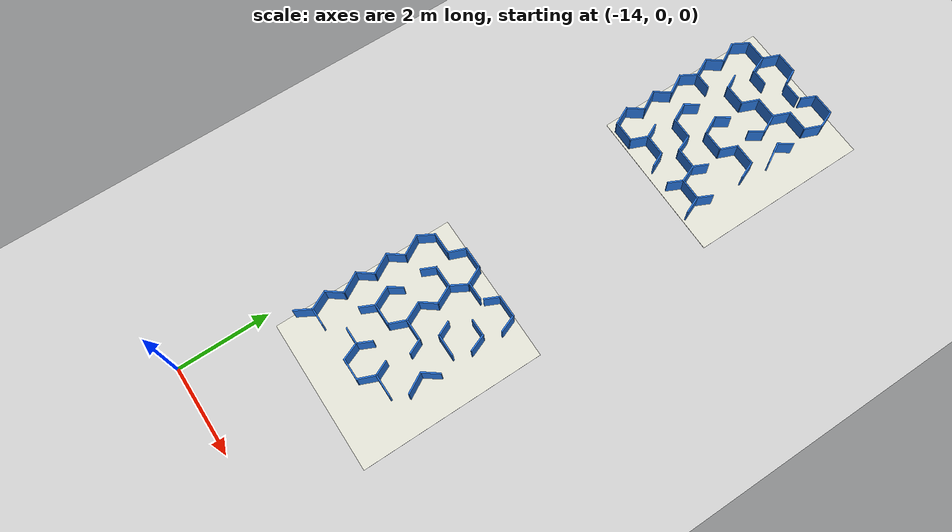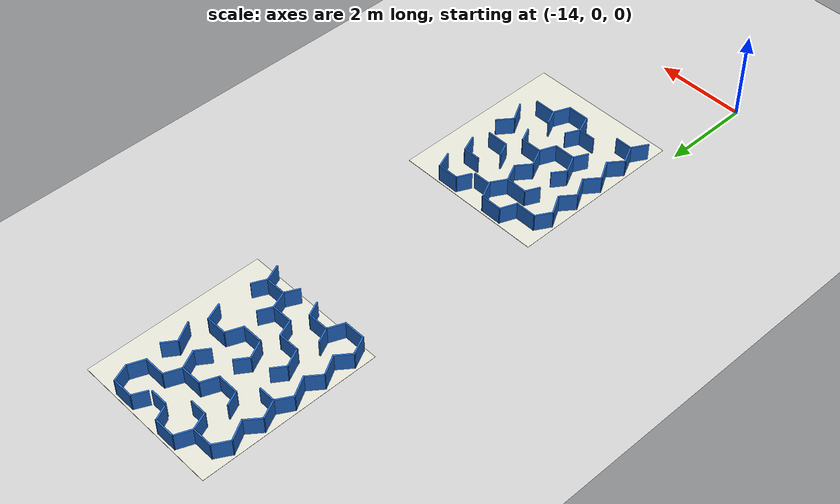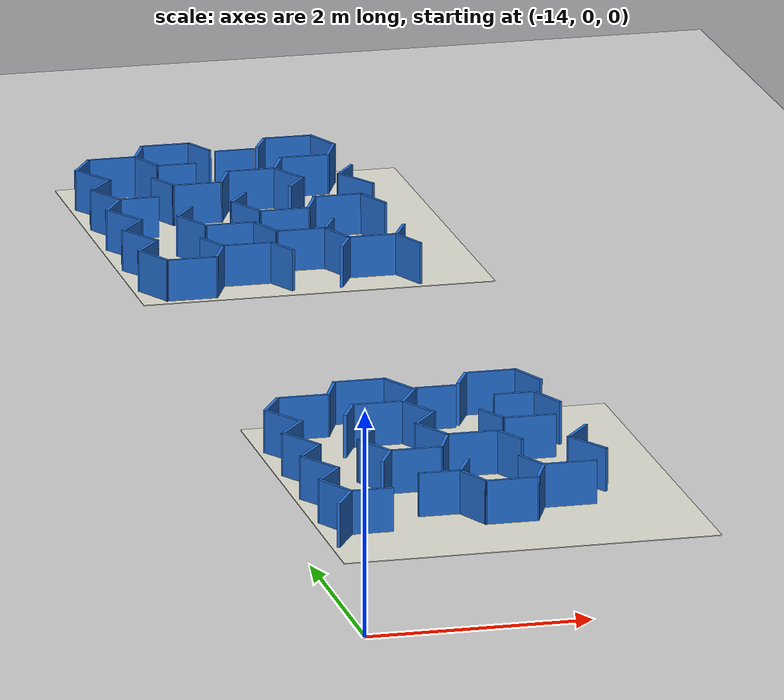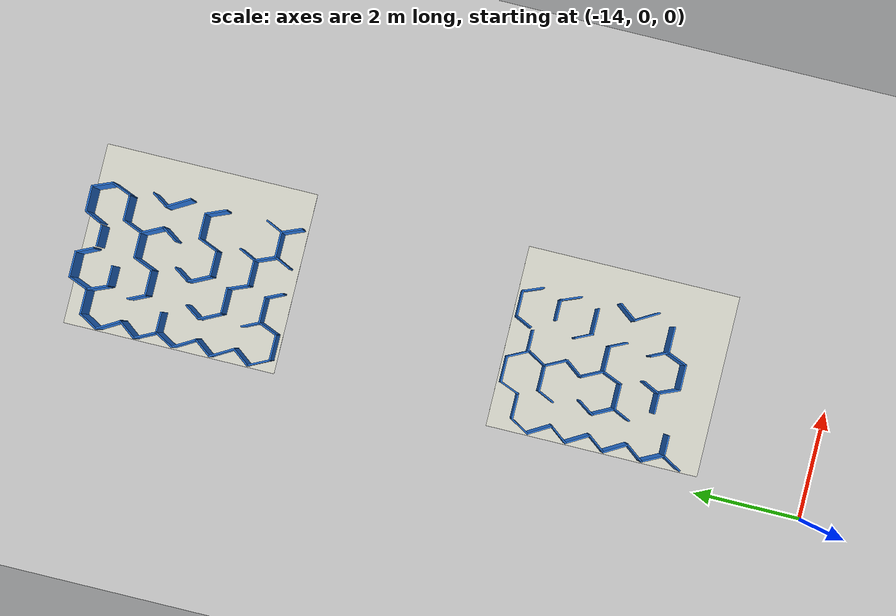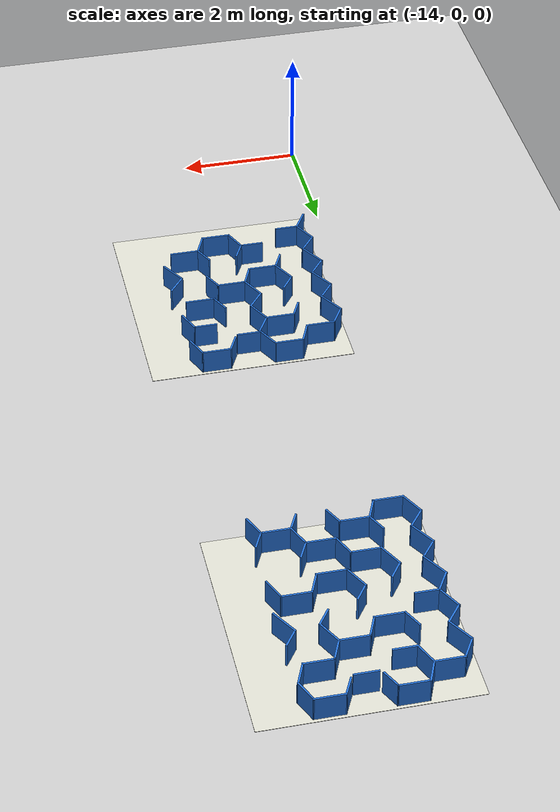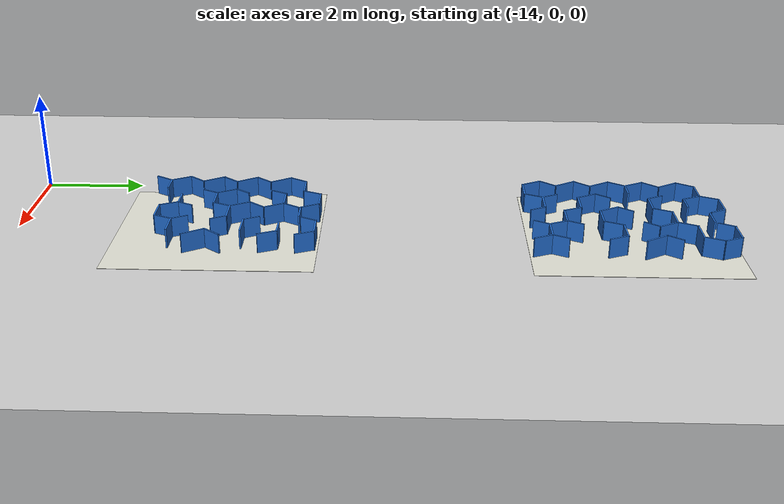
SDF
<sdf version="1.10">
 <world name="nhom8_maze_multi">
  <model name="ground_plane">
   <static>true</static>
   <link name="link">
    <collision name="collision">
     <geometry><plane><normal>0 0 1</normal><size>80.0 80.0</size></plane></geometry>
     <surface><friction><ode><mu>40</mu></ode></friction></surface>
    </collision>
    <visual name="visual">
     <geometry><plane><normal>0 0 1</normal><size>80.0 80.0</size></plane></geometry>
     <material>
      <ambient>0.8 0.8 0.8 1</ambient>
      <diffuse>0.8 0.8 0.8 1</diffuse>
      <specular>0.8 0.8 0.8 1</specular>
     </material>
    </visual>
   </link>
  </model>
  <model name="sigma_1_wall_000">
   <static>true</static>
   <pose>-12.609300 5.935000 0.2000 0 0 0.000000</pose>
   <link name="link">
    <collision name="col"><geometry><box><size>0.4974 0.0300 0.4000</size></box></geometry></collision>
    <visual name="vis">
     <geometry><box><size>0.4974 0.0300 0.4000</size></box></geometry>
     <material><ambient>0.15 0.45 0.85 1</ambient><diffuse>0.15 0.45 0.85 1</diffuse></material>
    </visual>
   </link>
  </model>
  <model name="sigma_1_wall_001">
   <static>true</static>
   <pose>-11.390150 5.935000 0.2000 0 0 0.000000</pose>
   <link name="link">
    <collision name="col"><geometry><box><size>0.4965 0.0300 0.4000</size></box></geometry></collision>
    <visual name="vis">
     <geometry><box><size>0.4965 0.0300 0.4000</size></box></geometry>
     <material><ambient>0.15 0.45 0.85 1</ambient><diffuse>0.15 0.45 0.85 1</diffuse></material>
    </visual>
   </link>
  </model>
  <model name="sigma_1_wall_002">
   <static>true</static>
   <pose>-13.215300 5.585700 0.2000 0 0 0.000000</pose>
   <link name="link">
    <collision name="col"><geometry><box><size>0.4950 0.0300 0.4000</size></box></geometry></collision>
    <visual name="vis">
     <geometry><box><size>0.4950 0.0300 0.4000</size></box></geometry>
     <material><ambient>0.15 0.45 0.85 1</ambient><diffuse>0.15 0.45 0.85 1</diffuse></material>
    </visual>
   </link>
  </model>
  <model name="sigma_1_wall_004">
   <static>true</static>
   <pose>-12.609450 5.231200 0.2000 0 0 0.000000</pose>
   <link name="link">
    <collision name="col"><geometry><box><size>0.4963 0.0300 0.4000</size></box></geometry></collision>
    <visual name="vis">
     <geometry><box><size>0.4963 0.0300 0.4000</size></box></geometry>
     <material><ambient>0.15 0.45 0.85 1</ambient><diffuse>0.15 0.45 0.85 1</diffuse></material>
    </visual>
   </link>
  </model>
  <model name="sigma_1_wall_005">
   <static>true</static>
   <pose>-11.339000 5.231200 0.2000 0 0 0.000000</pose>
   <link name="link">
    <collision name="col"><geometry><box><size>0.3938 0.0300 0.4000</size></box></geometry></collision>
    <visual name="vis">
     <geometry><box><size>0.3938 0.0300 0.4000</size></box></geometry>
     <material><ambient>0.15 0.45 0.85 1</ambient><diffuse>0.15 0.45 0.85 1</diffuse></material>
    </visual>
   </link>
  </model>
  <model name="sigma_1_wall_007">
   <static>true</static>
   <pose>-11.390350 4.530300 0.2000 0 0 0.000000</pose>
   <link name="link">
    <collision name="col"><geometry><box><size>0.4953 0.0300 0.4000</size></box></geometry></collision>
    <visual name="vis">
     <geometry><box><size>0.4953 0.0300 0.4000</size></box></geometry>
     <material><ambient>0.15 0.45 0.85 1</ambient><diffuse>0.15 0.45 0.85 1</diffuse></material>
    </visual>
   </link>
  </model>
  <model name="sigma_1_wall_008">
   <static>true</static>
   <pose>-11.998950 4.175900 0.2000 0 0 0.000000</pose>
   <link name="link">
    <collision name="col"><geometry><box><size>0.4941 0.0300 0.4000</size></box></geometry></collision>
    <visual name="vis">
     <geometry><box><size>0.4941 0.0300 0.4000</size></box></geometry>
     <material><ambient>0.15 0.45 0.85 1</ambient><diffuse>0.15 0.45 0.85 1</diffuse></material>
    </visual>
   </link>
  </model>
  <model name="sigma_1_wall_009">
   <static>true</static>
   <pose>-12.606650 3.829700 0.2000 0 0 0.000000</pose>
   <link name="link">
    <collision name="col"><geometry><box><size>0.4953 0.0300 0.4000</size></box></geometry></collision>
    <visual name="vis">
     <geometry><box><size>0.4953 0.0300 0.4000</size></box></geometry>
     <material><ambient>0.15 0.45 0.85 1</ambient><diffuse>0.15 0.45 0.85 1</diffuse></material>
    </visual>
   </link>
  </model>
  <model name="sigma_1_wall_010">
   <static>true</static>
   <pose>-12.559800 3.124800 0.2000 0 0 0.000000</pose>
   <link name="link">
    <collision name="col"><geometry><box><size>0.3934 0.0300 0.4000</size></box></geometry></collision>
    <visual name="vis">
     <geometry><box><size>0.3934 0.0300 0.4000</size></box></geometry>
     <material><ambient>0.15 0.45 0.85 1</ambient><diffuse>0.15 0.45 0.85 1</diffuse></material>
    </visual>
   </link>
  </model>
  <model name="sigma_1_wall_011">
   <static>true</static>
   <pose>-11.389500 3.124800 0.2000 0 0 0.000000</pose>
   <link name="link">
    <collision name="col"><geometry><box><size>0.4954 0.0300 0.4000</size></box></geometry></collision>
    <visual name="vis">
     <geometry><box><size>0.4954 0.0300 0.4000</size></box></geometry>
     <material><ambient>0.15 0.45 0.85 1</ambient><diffuse>0.15 0.45 0.85 1</diffuse></material>
    </visual>
   </link>
  </model>
  <model name="sigma_1_wall_012">
   <static>true</static>
   <pose>-13.266550 2.774100 0.2000 0 0 0.000000</pose>
   <link name="link">
    <collision name="col"><geometry><box><size>0.3957 0.0300 0.4000</size></box></geometry></collision>
    <visual name="vis">
     <geometry><box><size>0.3957 0.0300 0.4000</size></box></geometry>
     <material><ambient>0.15 0.45 0.85 1</ambient><diffuse>0.15 0.45 0.85 1</diffuse></material>
    </visual>
   </link>
  </model>
  <model name="sigma_1_wall_013">
   <static>true</static>
   <pose>-11.999000 2.774100 0.2000 0 0 0.000000</pose>
   <link name="link">
    <collision name="col"><geometry><box><size>0.4938 0.0300 0.4000</size></box></geometry></collision>
    <visual name="vis">
     <geometry><box><size>0.4938 0.0300 0.4000</size></box></geometry>
     <material><ambient>0.15 0.45 0.85 1</ambient><diffuse>0.15 0.45 0.85 1</diffuse></material>
    </visual>
   </link>
  </model>
  <model name="sigma_1_wall_019">
   <static>true</static>
   <pose>-11.086650 5.760300 0.2000 0 0 -1.188417</pose>
   <link name="link">
    <collision name="col"><geometry><box><size>0.4066 0.0300 0.4000</size></box></geometry></collision>
    <visual name="vis">
     <geometry><box><size>0.4066 0.0300 0.4000</size></box></geometry>
     <material><ambient>0.15 0.45 0.85 1</ambient><diffuse>0.15 0.45 0.85 1</diffuse></material>
    </visual>
   </link>
  </model>
  <model name="sigma_1_wall_021">
   <static>true</static>
   <pose>-11.087150 5.058100 0.2000 0 0 -1.186837</pose>
   <link name="link">
    <collision name="col"><geometry><box><size>0.4034 0.0300 0.4000</size></box></geometry></collision>
    <visual name="vis">
     <geometry><box><size>0.4034 0.0300 0.4000</size></box></geometry>
     <material><ambient>0.15 0.45 0.85 1</ambient><diffuse>0.15 0.45 0.85 1</diffuse></material>
    </visual>
   </link>
  </model>
  <model name="sigma_1_wall_025">
   <static>true</static>
   <pose>-12.281950 5.747350 0.2000 0 0 -1.107845</pose>
   <link name="link">
    <collision name="col"><geometry><box><size>0.4494 0.0300 0.4000</size></box></geometry></collision>
    <visual name="vis">
     <geometry><box><size>0.4494 0.0300 0.4000</size></box></geometry>
     <material><ambient>0.15 0.45 0.85 1</ambient><diffuse>0.15 0.45 0.85 1</diffuse></material>
    </visual>
   </link>
  </model>
  <model name="sigma_1_wall_026">
   <static>true</static>
   <pose>-11.691750 4.674450 0.2000 0 0 -1.125971</pose>
   <link name="link">
    <collision name="col"><geometry><box><size>0.3493 0.0300 0.4000</size></box></geometry></collision>
    <visual name="vis">
     <geometry><box><size>0.3493 0.0300 0.4000</size></box></geometry>
     <material><ambient>0.15 0.45 0.85 1</ambient><diffuse>0.15 0.45 0.85 1</diffuse></material>
    </visual>
   </link>
  </model>
  <model name="sigma_1_wall_027">
   <static>true</static>
   <pose>-11.086900 3.652000 0.2000 0 0 -1.047355</pose>
   <link name="link">
    <collision name="col"><geometry><box><size>0.4909 0.0300 0.4000</size></box></geometry></collision>
    <visual name="vis">
     <geometry><box><size>0.4909 0.0300 0.4000</size></box></geometry>
     <material><ambient>0.15 0.45 0.85 1</ambient><diffuse>0.15 0.45 0.85 1</diffuse></material>
    </visual>
   </link>
  </model>
  <model name="sigma_1_wall_029">
   <static>true</static>
   <pose>-12.282700 5.044250 0.2000 0 0 -1.106650</pose>
   <link name="link">
    <collision name="col"><geometry><box><size>0.4481 0.0300 0.4000</size></box></geometry></collision>
    <visual name="vis">
     <geometry><box><size>0.4481 0.0300 0.4000</size></box></geometry>
     <material><ambient>0.15 0.45 0.85 1</ambient><diffuse>0.15 0.45 0.85 1</diffuse></material>
    </visual>
   </link>
  </model>
  <model name="sigma_1_wall_030">
   <static>true</static>
   <pose>-11.698850 4.033100 0.2000 0 0 -1.126514</pose>
   <link name="link">
    <collision name="col"><geometry><box><size>0.3464 0.0300 0.4000</size></box></geometry></collision>
    <visual name="vis">
     <geometry><box><size>0.3464 0.0300 0.4000</size></box></geometry>
     <material><ambient>0.15 0.45 0.85 1</ambient><diffuse>0.15 0.45 0.85 1</diffuse></material>
    </visual>
   </link>
  </model>
  <model name="sigma_1_wall_031">
   <static>true</static>
   <pose>-12.325350 4.365800 0.2000 0 0 -1.109907</pose>
   <link name="link">
    <collision name="col"><geometry><box><size>0.4540 0.0300 0.4000</size></box></geometry></collision>
    <visual name="vis">
     <geometry><box><size>0.4540 0.0300 0.4000</size></box></geometry>
     <material><ambient>0.15 0.45 0.85 1</ambient><diffuse>0.15 0.45 0.85 1</diffuse></material>
    </visual>
   </link>
  </model>
  <model name="sigma_1_wall_032">
   <static>true</static>
   <pose>-11.691100 3.269000 0.2000 0 0 -1.124803</pose>
   <link name="link">
    <collision name="col"><geometry><box><size>0.3496 0.0300 0.4000</size></box></geometry></collision>
    <visual name="vis">
     <geometry><box><size>0.3496 0.0300 0.4000</size></box></geometry>
     <material><ambient>0.15 0.45 0.85 1</ambient><diffuse>0.15 0.45 0.85 1</diffuse></material>
    </visual>
   </link>
  </model>
  <model name="sigma_1_wall_034">
   <static>true</static>
   <pose>-13.520950 5.056800 0.2000 0 0 -1.047233</pose>
   <link name="link">
    <collision name="col"><geometry><box><size>0.4914 0.0300 0.4000</size></box></geometry></collision>
    <visual name="vis">
     <geometry><box><size>0.4914 0.0300 0.4000</size></box></geometry>
     <material><ambient>0.15 0.45 0.85 1</ambient><diffuse>0.15 0.45 0.85 1</diffuse></material>
    </visual>
   </link>
  </model>
  <model name="sigma_1_wall_035">
   <static>true</static>
   <pose>-12.934300 4.017350 0.2000 0 0 -1.102088</pose>
   <link name="link">
    <collision name="col"><geometry><box><size>0.4507 0.0300 0.4000</size></box></geometry></collision>
    <visual name="vis">
     <geometry><box><size>0.4507 0.0300 0.4000</size></box></geometry>
     <material><ambient>0.15 0.45 0.85 1</ambient><diffuse>0.15 0.45 0.85 1</diffuse></material>
    </visual>
   </link>
  </model>
  <model name="sigma_1_wall_036">
   <static>true</static>
   <pose>-12.304450 2.949450 0.2000 0 0 -1.173137</pose>
   <link name="link">
    <collision name="col"><geometry><box><size>0.4103 0.0300 0.4000</size></box></geometry></collision>
    <visual name="vis">
     <geometry><box><size>0.4103 0.0300 0.4000</size></box></geometry>
     <material><ambient>0.15 0.45 0.85 1</ambient><diffuse>0.15 0.45 0.85 1</diffuse></material>
    </visual>
   </link>
  </model>
  <model name="sigma_1_wall_037">
   <static>true</static>
   <pose>-13.521650 4.354750 0.2000 0 0 -1.047241</pose>
   <link name="link">
    <collision name="col"><geometry><box><size>0.4922 0.0300 0.4000</size></box></geometry></collision>
    <visual name="vis">
     <geometry><box><size>0.4922 0.0300 0.4000</size></box></geometry>
     <material><ambient>0.15 0.45 0.85 1</ambient><diffuse>0.15 0.45 0.85 1</diffuse></material>
    </visual>
   </link>
  </model>
  <model name="sigma_1_wall_039">
   <static>true</static>
   <pose>-13.521800 3.652050 0.2000 0 0 -1.047173</pose>
   <link name="link">
    <collision name="col"><geometry><box><size>0.4932 0.0300 0.4000</size></box></geometry></collision>
    <visual name="vis">
     <geometry><box><size>0.4932 0.0300 0.4000</size></box></geometry>
     <material><ambient>0.15 0.45 0.85 1</ambient><diffuse>0.15 0.45 0.85 1</diffuse></material>
    </visual>
   </link>
  </model>
  <model name="sigma_1_wall_040">
   <static>true</static>
   <pose>-13.543500 2.962350 0.2000 0 0 -1.107248</pose>
   <link name="link">
    <collision name="col"><geometry><box><size>0.4509 0.0300 0.4000</size></box></geometry></collision>
    <visual name="vis">
     <geometry><box><size>0.4509 0.0300 0.4000</size></box></geometry>
     <material><ambient>0.15 0.45 0.85 1</ambient><diffuse>0.15 0.45 0.85 1</diffuse></material>
    </visual>
   </link>
  </model>
  <model name="sigma_1_wall_050">
   <static>true</static>
   <pose>-11.086650 4.002550 0.2000 0 0 0.917494</pose>
   <link name="link">
    <collision name="col"><geometry><box><size>0.4102 0.0300 0.4000</size></box></geometry></collision>
    <visual name="vis">
     <geometry><box><size>0.4102 0.0300 0.4000</size></box></geometry>
     <material><ambient>0.15 0.45 0.85 1</ambient><diffuse>0.15 0.45 0.85 1</diffuse></material>
    </visual>
   </link>
  </model>
  <model name="sigma_1_wall_051">
   <static>true</static>
   <pose>-11.694650 2.949500 0.2000 0 0 1.179087</pose>
   <link name="link">
    <collision name="col"><geometry><box><size>0.4094 0.0300 0.4000</size></box></geometry></collision>
    <visual name="vis">
     <geometry><box><size>0.4094 0.0300 0.4000</size></box></geometry>
     <material><ambient>0.15 0.45 0.85 1</ambient><diffuse>0.15 0.45 0.85 1</diffuse></material>
    </visual>
   </link>
  </model>
  <model name="sigma_1_wall_053">
   <static>true</static>
   <pose>-12.308550 3.268700 0.2000 0 0 1.120708</pose>
   <link name="link">
    <collision name="col"><geometry><box><size>0.3496 0.0300 0.4000</size></box></geometry></collision>
    <visual name="vis">
     <geometry><box><size>0.3496 0.0300 0.4000</size></box></geometry>
     <material><ambient>0.15 0.45 0.85 1</ambient><diffuse>0.15 0.45 0.85 1</diffuse></material>
    </visual>
   </link>
  </model>
  <model name="sigma_1_wall_055">
   <static>true</static>
   <pose>-12.302500 4.002800 0.2000 0 0 1.179275</pose>
   <link name="link">
    <collision name="col"><geometry><box><size>0.4046 0.0300 0.4000</size></box></geometry></collision>
    <visual name="vis">
     <geometry><box><size>0.4046 0.0300 0.4000</size></box></geometry>
     <material><ambient>0.15 0.45 0.85 1</ambient><diffuse>0.15 0.45 0.85 1</diffuse></material>
    </visual>
   </link>
  </model>
  <model name="sigma_1_wall_056">
   <static>true</static>
   <pose>-11.691700 5.791350 0.2000 0 0 1.126550</pose>
   <link name="link">
    <collision name="col"><geometry><box><size>0.3481 0.0300 0.4000</size></box></geometry></collision>
    <visual name="vis">
     <geometry><box><size>0.3481 0.0300 0.4000</size></box></geometry>
     <material><ambient>0.15 0.45 0.85 1</ambient><diffuse>0.15 0.45 0.85 1</diffuse></material>
    </visual>
   </link>
  </model>
  <model name="sigma_1_wall_057">
   <static>true</static>
   <pose>-12.304400 4.706500 0.2000 0 0 0.918315</pose>
   <link name="link">
    <collision name="col"><geometry><box><size>0.4098 0.0300 0.4000</size></box></geometry></collision>
    <visual name="vis">
     <geometry><box><size>0.4098 0.0300 0.4000</size></box></geometry>
     <material><ambient>0.15 0.45 0.85 1</ambient><diffuse>0.15 0.45 0.85 1</diffuse></material>
    </visual>
   </link>
  </model>
  <model name="sigma_1_wall_058">
   <static>true</static>
   <pose>-12.908500 3.684300 0.2000 0 0 1.126963</pose>
   <link name="link">
    <collision name="col"><geometry><box><size>0.3521 0.0300 0.4000</size></box></geometry></collision>
    <visual name="vis">
     <geometry><box><size>0.3521 0.0300 0.4000</size></box></geometry>
     <material><ambient>0.15 0.45 0.85 1</ambient><diffuse>0.15 0.45 0.85 1</diffuse></material>
    </visual>
   </link>
  </model>
  <model name="sigma_1_wall_059">
   <static>true</static>
   <pose>-13.542800 2.610350 0.2000 0 0 1.052504</pose>
   <link name="link">
    <collision name="col"><geometry><box><size>0.4069 0.0300 0.4000</size></box></geometry></collision>
    <visual name="vis">
     <geometry><box><size>0.4069 0.0300 0.4000</size></box></geometry>
     <material><ambient>0.15 0.45 0.85 1</ambient><diffuse>0.15 0.45 0.85 1</diffuse></material>
    </visual>
   </link>
  </model>
  <model name="sigma_1_wall_060">
   <static>true</static>
   <pose>-12.282250 5.395450 0.2000 0 0 1.050952</pose>
   <link name="link">
    <collision name="col"><geometry><box><size>0.4085 0.0300 0.4000</size></box></geometry></collision>
    <visual name="vis">
     <geometry><box><size>0.4085 0.0300 0.4000</size></box></geometry>
     <material><ambient>0.15 0.45 0.85 1</ambient><diffuse>0.15 0.45 0.85 1</diffuse></material>
    </visual>
   </link>
  </model>
  <model name="sigma_1_wall_061">
   <static>true</static>
   <pose>-12.938600 4.336050 0.2000 0 0 0.965451</pose>
   <link name="link">
    <collision name="col"><geometry><box><size>0.3487 0.0300 0.4000</size></box></geometry></collision>
    <visual name="vis">
     <geometry><box><size>0.3487 0.0300 0.4000</size></box></geometry>
     <material><ambient>0.15 0.45 0.85 1</ambient><diffuse>0.15 0.45 0.85 1</diffuse></material>
    </visual>
   </link>
  </model>
  <model name="sigma_1_wall_062">
   <static>true</static>
   <pose>-13.521800 3.301000 0.2000 0 0 0.914505</pose>
   <link name="link">
    <collision name="col"><geometry><box><size>0.4097 0.0300 0.4000</size></box></geometry></collision>
    <visual name="vis">
     <geometry><box><size>0.4097 0.0300 0.4000</size></box></geometry>
     <material><ambient>0.15 0.45 0.85 1</ambient><diffuse>0.15 0.45 0.85 1</diffuse></material>
    </visual>
   </link>
  </model>
  <model name="sigma_1_wall_063">
   <static>true</static>
   <pose>-12.910000 5.088150 0.2000 0 0 1.130277</pose>
   <link name="link">
    <collision name="col"><geometry><box><size>0.3461 0.0300 0.4000</size></box></geometry></collision>
    <visual name="vis">
     <geometry><box><size>0.3461 0.0300 0.4000</size></box></geometry>
     <material><ambient>0.15 0.45 0.85 1</ambient><diffuse>0.15 0.45 0.85 1</diffuse></material>
    </visual>
   </link>
  </model>
  <model name="sigma_1_wall_064">
   <static>true</static>
   <pose>-13.521800 4.003600 0.2000 0 0 0.916675</pose>
   <link name="link">
    <collision name="col"><geometry><box><size>0.4105 0.0300 0.4000</size></box></geometry></collision>
    <visual name="vis">
     <geometry><box><size>0.4105 0.0300 0.4000</size></box></geometry>
     <material><ambient>0.15 0.45 0.85 1</ambient><diffuse>0.15 0.45 0.85 1</diffuse></material>
    </visual>
   </link>
  </model>
  <model name="sigma_1_wall_065">
   <static>true</static>
   <pose>-12.912950 5.760300 0.2000 0 0 1.190244</pose>
   <link name="link">
    <collision name="col"><geometry><box><size>0.4063 0.0300 0.4000</size></box></geometry></collision>
    <visual name="vis">
     <geometry><box><size>0.4063 0.0300 0.4000</size></box></geometry>
     <material><ambient>0.15 0.45 0.85 1</ambient><diffuse>0.15 0.45 0.85 1</diffuse></material>
    </visual>
   </link>
  </model>
  <model name="sigma_1_wall_066">
   <static>true</static>
   <pose>-13.521400 4.705950 0.2000 0 0 0.916823</pose>
   <link name="link">
    <collision name="col"><geometry><box><size>0.4106 0.0300 0.4000</size></box></geometry></collision>
    <visual name="vis">
     <geometry><box><size>0.4106 0.0300 0.4000</size></box></geometry>
     <material><ambient>0.15 0.45 0.85 1</ambient><diffuse>0.15 0.45 0.85 1</diffuse></material>
    </visual>
   </link>
  </model>
  <model name="sigma_1_wall_067">
   <static>true</static>
   <pose>-13.542050 5.421150 0.2000 0 0 1.050832</pose>
   <link name="link">
    <collision name="col"><geometry><box><size>0.4092 0.0300 0.4000</size></box></geometry></collision>
    <visual name="vis">
     <geometry><box><size>0.4092 0.0300 0.4000</size></box></geometry>
     <material><ambient>0.15 0.45 0.85 1</ambient><diffuse>0.15 0.45 0.85 1</diffuse></material>
    </visual>
   </link>
  </model>
  <model name="sigma_1_wall_068">
   <static>true</static>
   <pose>-11.997100 5.588500 0.2000 0 0 0.000000</pose>
   <link name="link">
    <collision name="col"><geometry><box><size>0.3966 0.0300 0.4000</size></box></geometry></collision>
    <visual name="vis">
     <geometry><box><size>0.3966 0.0300 0.4000</size></box></geometry>
     <material><ambient>0.15 0.45 0.85 1</ambient><diffuse>0.15 0.45 0.85 1</diffuse></material>
    </visual>
   </link>
  </model>
  <model name="sigma_1_floor">
   <static>true</static>
   <pose>-12.000000 4.000000 -0.02 0 0 0</pose>
   <link name="link">
    <collision name="col"><geometry><box><size>3.3945 3.9891 0.03</size></box></geometry></collision>
    <visual name="vis">
     <geometry><box><size>3.3945 3.9891 0.03</size></box></geometry>
     <material><ambient>0.87 0.87 0.82 1</ambient><diffuse>0.87 0.87 0.82 1</diffuse></material>
    </visual>
   </link>
  </model>
  <model name="sigma_5_wall_000">
   <static>true</static>
   <pose>-12.609300 13.935000 0.2000 0 0 0.000000</pose>
   <link name="link">
    <collision name="col"><geometry><box><size>0.4972 0.0300 0.4000</size></box></geometry></collision>
    <visual name="vis">
     <geometry><box><size>0.4972 0.0300 0.4000</size></box></geometry>
     <material><ambient>0.15 0.45 0.85 1</ambient><diffuse>0.15 0.45 0.85 1</diffuse></material>
    </visual>
   </link>
  </model>
  <model name="sigma_5_wall_001">
   <static>true</static>
   <pose>-11.390100 13.935000 0.2000 0 0 0.000000</pose>
   <link name="link">
    <collision name="col"><geometry><box><size>0.4964 0.0300 0.4000</size></box></geometry></collision>
    <visual name="vis">
     <geometry><box><size>0.4964 0.0300 0.4000</size></box></geometry>
     <material><ambient>0.15 0.45 0.85 1</ambient><diffuse>0.15 0.45 0.85 1</diffuse></material>
    </visual>
   </link>
  </model>
  <model name="sigma_5_wall_002">
   <static>true</static>
   <pose>-13.216750 13.584800 0.2000 0 0 0.000000</pose>
   <link name="link">
    <collision name="col"><geometry><box><size>0.4921 0.0300 0.4000</size></box></geometry></collision>
    <visual name="vis">
     <geometry><box><size>0.4921 0.0300 0.4000</size></box></geometry>
     <material><ambient>0.15 0.45 0.85 1</ambient><diffuse>0.15 0.45 0.85 1</diffuse></material>
    </visual>
   </link>
  </model>
  <model name="sigma_5_wall_004">
   <static>true</static>
   <pose>-12.660100 13.232500 0.2000 0 0 0.000000</pose>
   <link name="link">
    <collision name="col"><geometry><box><size>0.3920 0.0300 0.4000</size></box></geometry></collision>
    <visual name="vis">
     <geometry><box><size>0.3920 0.0300 0.4000</size></box></geometry>
     <material><ambient>0.15 0.45 0.85 1</ambient><diffuse>0.15 0.45 0.85 1</diffuse></material>
    </visual>
   </link>
  </model>
  <model name="sigma_5_wall_005">
   <static>true</static>
   <pose>-11.390450 13.232500 0.2000 0 0 0.000000</pose>
   <link name="link">
    <collision name="col"><geometry><box><size>0.4949 0.0300 0.4000</size></box></geometry></collision>
    <visual name="vis">
     <geometry><box><size>0.4949 0.0300 0.4000</size></box></geometry>
     <material><ambient>0.15 0.45 0.85 1</ambient><diffuse>0.15 0.45 0.85 1</diffuse></material>
    </visual>
   </link>
  </model>
  <model name="sigma_5_wall_006">
   <static>true</static>
   <pose>-12.000150 12.883100 0.2000 0 0 0.000000</pose>
   <link name="link">
    <collision name="col"><geometry><box><size>0.4937 0.0300 0.4000</size></box></geometry></collision>
    <visual name="vis">
     <geometry><box><size>0.4937 0.0300 0.4000</size></box></geometry>
     <material><ambient>0.15 0.45 0.85 1</ambient><diffuse>0.15 0.45 0.85 1</diffuse></material>
    </visual>
   </link>
  </model>
  <model name="sigma_5_wall_007">
   <static>true</static>
   <pose>-12.609400 12.532200 0.2000 0 0 0.000000</pose>
   <link name="link">
    <collision name="col"><geometry><box><size>0.4956 0.0300 0.4000</size></box></geometry></collision>
    <visual name="vis">
     <geometry><box><size>0.4956 0.0300 0.4000</size></box></geometry>
     <material><ambient>0.15 0.45 0.85 1</ambient><diffuse>0.15 0.45 0.85 1</diffuse></material>
    </visual>
   </link>
  </model>
  <model name="sigma_5_wall_008">
   <static>true</static>
   <pose>-13.266200 12.177000 0.2000 0 0 0.000000</pose>
   <link name="link">
    <collision name="col"><geometry><box><size>0.3950 0.0300 0.4000</size></box></geometry></collision>
    <visual name="vis">
     <geometry><box><size>0.3950 0.0300 0.4000</size></box></geometry>
     <material><ambient>0.15 0.45 0.85 1</ambient><diffuse>0.15 0.45 0.85 1</diffuse></material>
    </visual>
   </link>
  </model>
  <model name="sigma_5_wall_009">
   <static>true</static>
   <pose>-11.391300 11.828000 0.2000 0 0 0.000000</pose>
   <link name="link">
    <collision name="col"><geometry><box><size>0.4922 0.0300 0.4000</size></box></geometry></collision>
    <visual name="vis">
     <geometry><box><size>0.4922 0.0300 0.4000</size></box></geometry>
     <material><ambient>0.15 0.45 0.85 1</ambient><diffuse>0.15 0.45 0.85 1</diffuse></material>
    </visual>
   </link>
  </model>
  <model name="sigma_5_wall_010">
   <static>true</static>
   <pose>-11.999600 11.476000 0.2000 0 0 0.000000</pose>
   <link name="link">
    <collision name="col"><geometry><box><size>0.4952 0.0300 0.4000</size></box></geometry></collision>
    <visual name="vis">
     <geometry><box><size>0.4952 0.0300 0.4000</size></box></geometry>
     <material><ambient>0.15 0.45 0.85 1</ambient><diffuse>0.15 0.45 0.85 1</diffuse></material>
    </visual>
   </link>
  </model>
  <model name="sigma_5_wall_012">
   <static>true</static>
   <pose>-12.609200 11.124500 0.2000 0 0 0.000000</pose>
   <link name="link">
    <collision name="col"><geometry><box><size>0.4974 0.0300 0.4000</size></box></geometry></collision>
    <visual name="vis">
     <geometry><box><size>0.4974 0.0300 0.4000</size></box></geometry>
     <material><ambient>0.15 0.45 0.85 1</ambient><diffuse>0.15 0.45 0.85 1</diffuse></material>
    </visual>
   </link>
  </model>
  <model name="sigma_5_wall_013">
   <static>true</static>
   <pose>-12.000700 10.774600 0.2000 0 0 0.000000</pose>
   <link name="link">
    <collision name="col"><geometry><box><size>0.4942 0.0300 0.4000</size></box></geometry></collision>
    <visual name="vis">
     <geometry><box><size>0.4942 0.0300 0.4000</size></box></geometry>
     <material><ambient>0.15 0.45 0.85 1</ambient><diffuse>0.15 0.45 0.85 1</diffuse></material>
    </visual>
   </link>
  </model>
  <model name="sigma_5_wall_014">
   <static>true</static>
   <pose>-12.606600 10.419600 0.2000 0 0 0.000000</pose>
   <link name="link">
    <collision name="col"><geometry><box><size>0.4962 0.0300 0.4000</size></box></geometry></collision>
    <visual name="vis">
     <geometry><box><size>0.4962 0.0300 0.4000</size></box></geometry>
     <material><ambient>0.15 0.45 0.85 1</ambient><diffuse>0.15 0.45 0.85 1</diffuse></material>
    </visual>
   </link>
  </model>
  <model name="sigma_5_wall_015">
   <static>true</static>
   <pose>-11.390700 10.419600 0.2000 0 0 0.000000</pose>
   <link name="link">
    <collision name="col"><geometry><box><size>0.4916 0.0300 0.4000</size></box></geometry></collision>
    <visual name="vis">
     <geometry><box><size>0.4916 0.0300 0.4000</size></box></geometry>
     <material><ambient>0.15 0.45 0.85 1</ambient><diffuse>0.15 0.45 0.85 1</diffuse></material>
    </visual>
   </link>
  </model>
  <model name="sigma_5_wall_016">
   <static>true</static>
   <pose>-13.217450 10.073700 0.2000 0 0 0.000000</pose>
   <link name="link">
    <collision name="col"><geometry><box><size>0.4991 0.0300 0.4000</size></box></geometry></collision>
    <visual name="vis">
     <geometry><box><size>0.4991 0.0300 0.4000</size></box></geometry>
     <material><ambient>0.15 0.45 0.85 1</ambient><diffuse>0.15 0.45 0.85 1</diffuse></material>
    </visual>
   </link>
  </model>
  <model name="sigma_5_wall_019">
   <static>true</static>
   <pose>-11.085450 13.759900 0.2000 0 0 -1.183240</pose>
   <link name="link">
    <collision name="col"><geometry><box><size>0.4083 0.0300 0.4000</size></box></geometry></collision>
    <visual name="vis">
     <geometry><box><size>0.4083 0.0300 0.4000</size></box></geometry>
     <material><ambient>0.15 0.45 0.85 1</ambient><diffuse>0.15 0.45 0.85 1</diffuse></material>
    </visual>
   </link>
  </model>
  <model name="sigma_5_wall_022">
   <static>true</static>
   <pose>-11.086750 12.354550 0.2000 0 0 -1.047186</pose>
   <link name="link">
    <collision name="col"><geometry><box><size>0.4918 0.0300 0.4000</size></box></geometry></collision>
    <visual name="vis">
     <geometry><box><size>0.4918 0.0300 0.4000</size></box></geometry>
     <material><ambient>0.15 0.45 0.85 1</ambient><diffuse>0.15 0.45 0.85 1</diffuse></material>
    </visual>
   </link>
  </model>
  <model name="sigma_5_wall_024">
   <static>true</static>
   <pose>-12.307600 13.791500 0.2000 0 0 -1.127738</pose>
   <link name="link">
    <collision name="col"><geometry><box><size>0.3476 0.0300 0.4000</size></box></geometry></collision>
    <visual name="vis">
     <geometry><box><size>0.3476 0.0300 0.4000</size></box></geometry>
     <material><ambient>0.15 0.45 0.85 1</ambient><diffuse>0.15 0.45 0.85 1</diffuse></material>
    </visual>
   </link>
  </model>
  <model name="sigma_5_wall_025">
   <static>true</static>
   <pose>-11.673850 12.694050 0.2000 0 0 -1.107445</pose>
   <link name="link">
    <collision name="col"><geometry><box><size>0.4526 0.0300 0.4000</size></box></geometry></collision>
    <visual name="vis">
     <geometry><box><size>0.4526 0.0300 0.4000</size></box></geometry>
     <material><ambient>0.15 0.45 0.85 1</ambient><diffuse>0.15 0.45 0.85 1</diffuse></material>
    </visual>
   </link>
  </model>
  <model name="sigma_5_wall_026">
   <static>true</static>
   <pose>-11.086950 11.652000 0.2000 0 0 -1.176604</pose>
   <link name="link">
    <collision name="col"><geometry><box><size>0.4111 0.0300 0.4000</size></box></geometry></collision>
    <visual name="vis">
     <geometry><box><size>0.4111 0.0300 0.4000</size></box></geometry>
     <material><ambient>0.15 0.45 0.85 1</ambient><diffuse>0.15 0.45 0.85 1</diffuse></material>
    </visual>
   </link>
  </model>
  <model name="sigma_5_wall_028">
   <static>true</static>
   <pose>-12.913400 13.408650 0.2000 0 0 -1.181341</pose>
   <link name="link">
    <collision name="col"><geometry><box><size>0.4109 0.0300 0.4000</size></box></geometry></collision>
    <visual name="vis">
     <geometry><box><size>0.4109 0.0300 0.4000</size></box></geometry>
     <material><ambient>0.15 0.45 0.85 1</ambient><diffuse>0.15 0.45 0.85 1</diffuse></material>
    </visual>
   </link>
  </model>
  <model name="sigma_5_wall_029">
   <static>true</static>
   <pose>-11.088450 10.246650 0.2000 0 0 -1.178574</pose>
   <link name="link">
    <collision name="col"><geometry><box><size>0.4042 0.0300 0.4000</size></box></geometry></collision>
    <visual name="vis">
     <geometry><box><size>0.4042 0.0300 0.4000</size></box></geometry>
     <material><ambient>0.15 0.45 0.85 1</ambient><diffuse>0.15 0.45 0.85 1</diffuse></material>
    </visual>
   </link>
  </model>
  <model name="sigma_5_wall_030">
   <static>true</static>
   <pose>-12.910100 12.676300 0.2000 0 0 -1.130251</pose>
   <link name="link">
    <collision name="col"><geometry><box><size>0.3485 0.0300 0.4000</size></box></geometry></collision>
    <visual name="vis">
     <geometry><box><size>0.3485 0.0300 0.4000</size></box></geometry>
     <material><ambient>0.15 0.45 0.85 1</ambient><diffuse>0.15 0.45 0.85 1</diffuse></material>
    </visual>
   </link>
  </model>
  <model name="sigma_5_wall_031">
   <static>true</static>
   <pose>-12.325850 11.664400 0.2000 0 0 -1.109729</pose>
   <link name="link">
    <collision name="col"><geometry><box><size>0.4507 0.0300 0.4000</size></box></geometry></collision>
    <visual name="vis">
     <geometry><box><size>0.4507 0.0300 0.4000</size></box></geometry>
     <material><ambient>0.15 0.45 0.85 1</ambient><diffuse>0.15 0.45 0.85 1</diffuse></material>
    </visual>
   </link>
  </model>
  <model name="sigma_5_wall_032">
   <static>true</static>
   <pose>-11.695100 10.597050 0.2000 0 0 -1.177918</pose>
   <link name="link">
    <collision name="col"><geometry><box><size>0.4143 0.0300 0.4000</size></box></geometry></collision>
    <visual name="vis">
     <geometry><box><size>0.4143 0.0300 0.4000</size></box></geometry>
     <material><ambient>0.15 0.45 0.85 1</ambient><diffuse>0.15 0.45 0.85 1</diffuse></material>
    </visual>
   </link>
  </model>
  <model name="sigma_5_wall_033">
   <static>true</static>
   <pose>-13.521000 13.056650 0.2000 0 0 -1.047159</pose>
   <link name="link">
    <collision name="col"><geometry><box><size>0.4916 0.0300 0.4000</size></box></geometry></collision>
    <visual name="vis">
     <geometry><box><size>0.4916 0.0300 0.4000</size></box></geometry>
     <material><ambient>0.15 0.45 0.85 1</ambient><diffuse>0.15 0.45 0.85 1</diffuse></material>
    </visual>
   </link>
  </model>
  <model name="sigma_5_wall_034">
   <static>true</static>
   <pose>-12.304150 10.949550 0.2000 0 0 -1.183870</pose>
   <link name="link">
    <collision name="col"><geometry><box><size>0.4079 0.0300 0.4000</size></box></geometry></collision>
    <visual name="vis">
     <geometry><box><size>0.4079 0.0300 0.4000</size></box></geometry>
     <material><ambient>0.15 0.45 0.85 1</ambient><diffuse>0.15 0.45 0.85 1</diffuse></material>
    </visual>
   </link>
  </model>
  <model name="sigma_5_wall_035">
   <static>true</static>
   <pose>-13.543100 12.366450 0.2000 0 0 -1.108826</pose>
   <link name="link">
    <collision name="col"><geometry><box><size>0.4532 0.0300 0.4000</size></box></geometry></collision>
    <visual name="vis">
     <geometry><box><size>0.4532 0.0300 0.4000</size></box></geometry>
     <material><ambient>0.15 0.45 0.85 1</ambient><diffuse>0.15 0.45 0.85 1</diffuse></material>
    </visual>
   </link>
  </model>
  <model name="sigma_5_wall_036">
   <static>true</static>
   <pose>-12.935950 11.313150 0.2000 0 0 -1.112210</pose>
   <link name="link">
    <collision name="col"><geometry><box><size>0.4507 0.0300 0.4000</size></box></geometry></collision>
    <visual name="vis">
     <geometry><box><size>0.4507 0.0300 0.4000</size></box></geometry>
     <material><ambient>0.15 0.45 0.85 1</ambient><diffuse>0.15 0.45 0.85 1</diffuse></material>
    </visual>
   </link>
  </model>
  <model name="sigma_5_wall_037">
   <static>true</static>
   <pose>-12.305900 10.276150 0.2000 0 0 -1.130463</pose>
   <link name="link">
    <collision name="col"><geometry><box><size>0.3472 0.0300 0.4000</size></box></geometry></collision>
    <visual name="vis">
     <geometry><box><size>0.3472 0.0300 0.4000</size></box></geometry>
     <material><ambient>0.15 0.45 0.85 1</ambient><diffuse>0.15 0.45 0.85 1</diffuse></material>
    </visual>
   </link>
  </model>
  <model name="sigma_5_wall_038">
   <static>true</static>
   <pose>-13.521800 11.651900 0.2000 0 0 -1.047072</pose>
   <link name="link">
    <collision name="col"><geometry><box><size>0.4931 0.0300 0.4000</size></box></geometry></collision>
    <visual name="vis">
     <geometry><box><size>0.4931 0.0300 0.4000</size></box></geometry>
     <material><ambient>0.15 0.45 0.85 1</ambient><diffuse>0.15 0.45 0.85 1</diffuse></material>
    </visual>
   </link>
  </model>
  <model name="sigma_5_wall_039">
   <static>true</static>
   <pose>-12.908850 10.564700 0.2000 0 0 -1.126487</pose>
   <link name="link">
    <collision name="col"><geometry><box><size>0.3515 0.0300 0.4000</size></box></geometry></collision>
    <visual name="vis">
     <geometry><box><size>0.3515 0.0300 0.4000</size></box></geometry>
     <material><ambient>0.15 0.45 0.85 1</ambient><diffuse>0.15 0.45 0.85 1</diffuse></material>
    </visual>
   </link>
  </model>
  <model name="sigma_5_wall_040">
   <static>true</static>
   <pose>-13.521850 10.949250 0.2000 0 0 -1.047241</pose>
   <link name="link">
    <collision name="col"><geometry><box><size>0.4922 0.0300 0.4000</size></box></geometry></collision>
    <visual name="vis">
     <geometry><box><size>0.4922 0.0300 0.4000</size></box></geometry>
     <material><ambient>0.15 0.45 0.85 1</ambient><diffuse>0.15 0.45 0.85 1</diffuse></material>
    </visual>
   </link>
  </model>
  <model name="sigma_5_wall_041">
   <static>true</static>
   <pose>-13.544050 10.260150 0.2000 0 0 -1.112266</pose>
   <link name="link">
    <collision name="col"><geometry><box><size>0.4457 0.0300 0.4000</size></box></geometry></collision>
    <visual name="vis">
     <geometry><box><size>0.4457 0.0300 0.4000</size></box></geometry>
     <material><ambient>0.15 0.45 0.85 1</ambient><diffuse>0.15 0.45 0.85 1</diffuse></material>
    </visual>
   </link>
  </model>
  <model name="sigma_5_wall_045">
   <static>true</static>
   <pose>-11.090950 10.564650 0.2000 0 0 1.126879</pose>
   <link name="link">
    <collision name="col"><geometry><box><size>0.3514 0.0300 0.4000</size></box></geometry></collision>
    <visual name="vis">
     <geometry><box><size>0.3514 0.0300 0.4000</size></box></geometry>
     <material><ambient>0.15 0.45 0.85 1</ambient><diffuse>0.15 0.45 0.85 1</diffuse></material>
    </visual>
   </link>
  </model>
  <model name="sigma_5_wall_048">
   <static>true</static>
   <pose>-11.691200 10.275900 0.2000 0 0 1.118922</pose>
   <link name="link">
    <collision name="col"><geometry><box><size>0.3495 0.0300 0.4000</size></box></geometry></collision>
    <visual name="vis">
     <geometry><box><size>0.3495 0.0300 0.4000</size></box></geometry>
     <material><ambient>0.15 0.45 0.85 1</ambient><diffuse>0.15 0.45 0.85 1</diffuse></material>
    </visual>
   </link>
  </model>
  <model name="sigma_5_wall_051">
   <static>true</static>
   <pose>-11.699250 10.918300 0.2000 0 0 1.121490</pose>
   <link name="link">
    <collision name="col"><geometry><box><size>0.3493 0.0300 0.4000</size></box></geometry></collision>
    <visual name="vis">
     <geometry><box><size>0.3493 0.0300 0.4000</size></box></geometry>
     <material><ambient>0.15 0.45 0.85 1</ambient><diffuse>0.15 0.45 0.85 1</diffuse></material>
    </visual>
   </link>
  </model>
  <model name="sigma_5_wall_052">
   <static>true</static>
   <pose>-11.111300 12.686950 0.2000 0 0 0.969843</pose>
   <link name="link">
    <collision name="col"><geometry><box><size>0.3512 0.0300 0.4000</size></box></geometry></collision>
    <visual name="vis">
     <geometry><box><size>0.3512 0.0300 0.4000</size></box></geometry>
     <material><ambient>0.15 0.45 0.85 1</ambient><diffuse>0.15 0.45 0.85 1</diffuse></material>
    </visual>
   </link>
  </model>
  <model name="sigma_5_wall_053">
   <static>true</static>
   <pose>-11.694700 11.651950 0.2000 0 0 1.180971</pose>
   <link name="link">
    <collision name="col"><geometry><box><size>0.4105 0.0300 0.4000</size></box></geometry></collision>
    <visual name="vis">
     <geometry><box><size>0.4105 0.0300 0.4000</size></box></geometry>
     <material><ambient>0.15 0.45 0.85 1</ambient><diffuse>0.15 0.45 0.85 1</diffuse></material>
    </visual>
   </link>
  </model>
  <model name="sigma_5_wall_054">
   <static>true</static>
   <pose>-11.085950 13.408650 0.2000 0 0 1.182918</pose>
   <link name="link">
    <collision name="col"><geometry><box><size>0.4106 0.0300 0.4000</size></box></geometry></collision>
    <visual name="vis">
     <geometry><box><size>0.4106 0.0300 0.4000</size></box></geometry>
     <material><ambient>0.15 0.45 0.85 1</ambient><diffuse>0.15 0.45 0.85 1</diffuse></material>
    </visual>
   </link>
  </model>
  <model name="sigma_5_wall_055">
   <static>true</static>
   <pose>-11.670150 12.373800 0.2000 0 0 0.965705</pose>
   <link name="link">
    <collision name="col"><geometry><box><size>0.3490 0.0300 0.4000</size></box></geometry></collision>
    <visual name="vis">
     <geometry><box><size>0.3490 0.0300 0.4000</size></box></geometry>
     <material><ambient>0.15 0.45 0.85 1</ambient><diffuse>0.15 0.45 0.85 1</diffuse></material>
    </visual>
   </link>
  </model>
  <model name="sigma_5_wall_056">
   <static>true</static>
   <pose>-12.911300 10.246650 0.2000 0 0 1.178346</pose>
   <link name="link">
    <collision name="col"><geometry><box><size>0.4042 0.0300 0.4000</size></box></geometry></collision>
    <visual name="vis">
     <geometry><box><size>0.4042 0.0300 0.4000</size></box></geometry>
     <material><ambient>0.15 0.45 0.85 1</ambient><diffuse>0.15 0.45 0.85 1</diffuse></material>
    </visual>
   </link>
  </model>
  <model name="sigma_5_wall_057">
   <static>true</static>
   <pose>-11.695600 13.057800 0.2000 0 0 1.176194</pose>
   <link name="link">
    <collision name="col"><geometry><box><size>0.4084 0.0300 0.4000</size></box></geometry></collision>
    <visual name="vis">
     <geometry><box><size>0.4084 0.0300 0.4000</size></box></geometry>
     <material><ambient>0.15 0.45 0.85 1</ambient><diffuse>0.15 0.45 0.85 1</diffuse></material>
    </visual>
   </link>
  </model>
  <model name="sigma_5_wall_058">
   <static>true</static>
   <pose>-12.328750 11.984400 0.2000 0 0 0.967331</pose>
   <link name="link">
    <collision name="col"><geometry><box><size>0.3498 0.0300 0.4000</size></box></geometry></collision>
    <visual name="vis">
     <geometry><box><size>0.3498 0.0300 0.4000</size></box></geometry>
     <material><ambient>0.15 0.45 0.85 1</ambient><diffuse>0.15 0.45 0.85 1</diffuse></material>
    </visual>
   </link>
  </model>
  <model name="sigma_5_wall_059">
   <static>true</static>
   <pose>-11.691650 13.791350 0.2000 0 0 1.126809</pose>
   <link name="link">
    <collision name="col"><geometry><box><size>0.3480 0.0300 0.4000</size></box></geometry></collision>
    <visual name="vis">
     <geometry><box><size>0.3480 0.0300 0.4000</size></box></geometry>
     <material><ambient>0.15 0.45 0.85 1</ambient><diffuse>0.15 0.45 0.85 1</diffuse></material>
    </visual>
   </link>
  </model>
  <model name="sigma_5_wall_060">
   <static>true</static>
   <pose>-12.304300 12.707700 0.2000 0 0 1.179950</pose>
   <link name="link">
    <collision name="col"><geometry><box><size>0.4095 0.0300 0.4000</size></box></geometry></collision>
    <visual name="vis">
     <geometry><box><size>0.4095 0.0300 0.4000</size></box></geometry>
     <material><ambient>0.15 0.45 0.85 1</ambient><diffuse>0.15 0.45 0.85 1</diffuse></material>
    </visual>
   </link>
  </model>
  <model name="sigma_5_wall_061">
   <static>true</static>
   <pose>-12.938050 11.633350 0.2000 0 0 0.965432</pose>
   <link name="link">
    <collision name="col"><geometry><box><size>0.3499 0.0300 0.4000</size></box></geometry></collision>
    <visual name="vis">
     <geometry><box><size>0.3499 0.0300 0.4000</size></box></geometry>
     <material><ambient>0.15 0.45 0.85 1</ambient><diffuse>0.15 0.45 0.85 1</diffuse></material>
    </visual>
   </link>
  </model>
  <model name="sigma_5_wall_062">
   <static>true</static>
   <pose>-13.521200 10.597850 0.2000 0 0 0.921198</pose>
   <link name="link">
    <collision name="col"><geometry><box><size>0.4100 0.0300 0.4000</size></box></geometry></collision>
    <visual name="vis">
     <geometry><box><size>0.4100 0.0300 0.4000</size></box></geometry>
     <material><ambient>0.15 0.45 0.85 1</ambient><diffuse>0.15 0.45 0.85 1</diffuse></material>
    </visual>
   </link>
  </model>
  <model name="sigma_5_wall_063">
   <static>true</static>
   <pose>-13.521700 11.300400 0.2000 0 0 0.917062</pose>
   <link name="link">
    <collision name="col"><geometry><box><size>0.4104 0.0300 0.4000</size></box></geometry></collision>
    <visual name="vis">
     <geometry><box><size>0.4104 0.0300 0.4000</size></box></geometry>
     <material><ambient>0.15 0.45 0.85 1</ambient><diffuse>0.15 0.45 0.85 1</diffuse></material>
    </visual>
   </link>
  </model>
  <model name="sigma_5_wall_064">
   <static>true</static>
   <pose>-13.543150 12.014700 0.2000 0 0 1.043787</pose>
   <link name="link">
    <collision name="col"><geometry><box><size>0.4054 0.0300 0.4000</size></box></geometry></collision>
    <visual name="vis">
     <geometry><box><size>0.4054 0.0300 0.4000</size></box></geometry>
     <material><ambient>0.15 0.45 0.85 1</ambient><diffuse>0.15 0.45 0.85 1</diffuse></material>
    </visual>
   </link>
  </model>
  <model name="sigma_5_wall_065">
   <static>true</static>
   <pose>-12.914300 13.759900 0.2000 0 0 1.183467</pose>
   <link name="link">
    <collision name="col"><geometry><box><size>0.4082 0.0300 0.4000</size></box></geometry></collision>
    <visual name="vis">
     <geometry><box><size>0.4082 0.0300 0.4000</size></box></geometry>
     <material><ambient>0.15 0.45 0.85 1</ambient><diffuse>0.15 0.45 0.85 1</diffuse></material>
    </visual>
   </link>
  </model>
  <model name="sigma_5_wall_066">
   <static>true</static>
   <pose>-13.521550 12.706300 0.2000 0 0 0.914312</pose>
   <link name="link">
    <collision name="col"><geometry><box><size>0.4098 0.0300 0.4000</size></box></geometry></collision>
    <visual name="vis">
     <geometry><box><size>0.4098 0.0300 0.4000</size></box></geometry>
     <material><ambient>0.15 0.45 0.85 1</ambient><diffuse>0.15 0.45 0.85 1</diffuse></material>
    </visual>
   </link>
  </model>
  <model name="sigma_5_wall_067">
   <static>true</static>
   <pose>-13.542100 13.420650 0.2000 0 0 1.049222</pose>
   <link name="link">
    <collision name="col"><geometry><box><size>0.4086 0.0300 0.4000</size></box></geometry></collision>
    <visual name="vis">
     <geometry><box><size>0.4086 0.0300 0.4000</size></box></geometry>
     <material><ambient>0.15 0.45 0.85 1</ambient><diffuse>0.15 0.45 0.85 1</diffuse></material>
    </visual>
   </link>
  </model>
  <model name="sigma_5_wall_068">
   <static>true</static>
   <pose>-11.997100 13.594200 0.2000 0 0 0.000000</pose>
   <link name="link">
    <collision name="col"><geometry><box><size>0.3966 0.0300 0.4000</size></box></geometry></collision>
    <visual name="vis">
     <geometry><box><size>0.3966 0.0300 0.4000</size></box></geometry>
     <material><ambient>0.15 0.45 0.85 1</ambient><diffuse>0.15 0.45 0.85 1</diffuse></material>
    </visual>
   </link>
  </model>
  <model name="sigma_5_floor">
   <static>true</static>
   <pose>-12.000000 12.000000 -0.02 0 0 0</pose>
   <link name="link">
    <collision name="col"><geometry><box><size>3.3943 3.9890 0.03</size></box></geometry></collision>
    <visual name="vis">
     <geometry><box><size>3.3943 3.9890 0.03</size></box></geometry>
     <material><ambient>0.87 0.87 0.82 1</ambient><diffuse>0.87 0.87 0.82 1</diffuse></material>
    </visual>
   </link>
  </model>
 </world>
</sdf>
